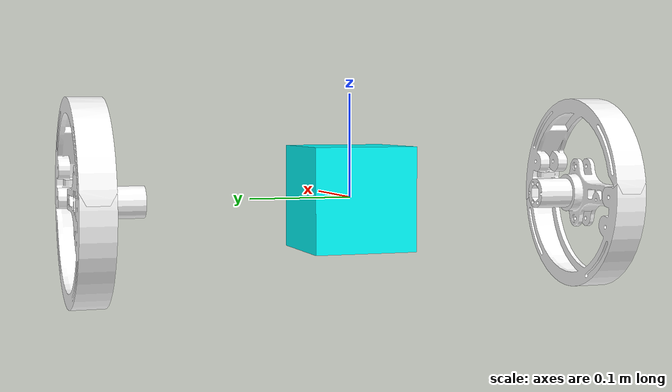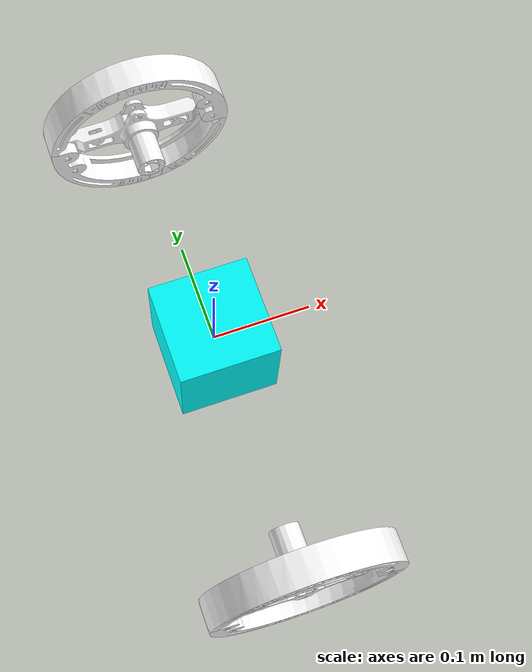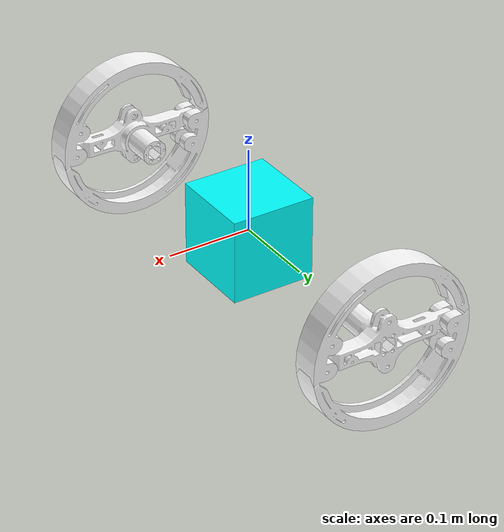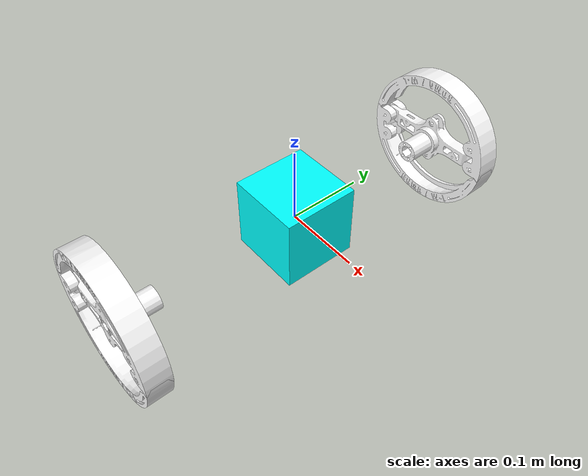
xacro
<?xml version="1.0" encoding="utf-8"?>

<robot xmlns:xacro="http://www.ros.org/wiki/xacro" name="WheelLegSegway">

  <!--load model definations-->
  <xacro:include filename="$(find wheelleg_description)/urdf/WheelLeg.xacro"/>

  <!--load gazebo specific configuration-->
  <xacro:include filename="$(find wheelleg_description)/urdf/WheelLeg.gazebo"/>

  <!--load control interface for robot-->
  <gazebo>
    <plugin name="gazebo_ros_control" filename="libgazebo_ros_control.so">
      <robotNamespace>/WheelLegSegway</robotNamespace>
    </plugin>
  </gazebo>

  <link name="static_base">

    <inertial>
      <origin xyz="0.05 0.05 0.05" rpy="0 0 0"/>
      <mass value="1"/>
      <inertia ixx="0.00167"  ixy="0"  ixz="0" iyy="0.00167" iyz="0" izz="0.00167" />
    </inertial>

    <visual>
      <origin xyz="0 0 0" rpy="0 0 0" />
      <geometry>
        <box size="0.1 0.1 0.1" />
      </geometry>
      <material name="Cyan">
        <color rgba="0 1.0 1.0 1.0"/>
      </material>
    </visual>

  </link>

  <gazebo>
      <joint name ="weld" type="fixed">
          <parent>world</parent>
          <child>static_base</child>
      </joint>
  </gazebo>

  <joint name="z_dof" type="prismatic">
    <origin xyz="0 0 0" rpy="0 0 0"/>
    <parent link="static_base"/>
    <child link="z_dummy_link"/>
    <limit effort="30" velocity="100.0" lower="-200" upper="200" />
    <axis xyz="0 0 1"/>
  </joint>

  <link name="z_dummy_link">

    <inertial>
      <origin xyz="0.05 0.05 0.05" rpy="0 0 0"/>
      <mass value="1"/>
      <inertia ixx="0.00167"  ixy="0"  ixz="0" iyy="0.00167" iyz="0" izz="0.00167" />
    </inertial>

    <visual>
      <origin xyz="0 0 0" rpy="0 0 0" />
      <geometry>
        <box size="0.1 0.1 0.1" />
      </geometry>
      <material name="Cyan">
        <color rgba="0 1.0 1.0 1.0"/>
      </material>
    </visual>

  </link>

  <joint name="x_dof" type="prismatic">
    <origin xyz="0 0 0" rpy="0 0 0"/>
    <parent link="z_dummy_link"/>
    <child link="base_link"/>
    <limit effort="30" velocity="100.0" lower="-200" upper="200" />
    <axis xyz="1 0 0"/>\
  </joint>

  <!--define robot base link-->
  <link name="base_link">
    <inertial>
      <origin xyz="0.05 0.05 0.05" rpy="0 0 0"/>
      <mass value="1"/>
      <inertia ixx="0.00167"  ixy="0"  ixz="0" iyy="0.00167" iyz="0" izz="0.00167" />
    </inertial>

    <visual>
      <origin xyz="0 0 0" rpy="0 0 0" />
      <geometry>
        <box size="0.1 0.1 0.1" />
      </geometry>
      <material name="Cyan">
        <color rgba="0 1.0 1.0 1.0"/>
      </material>
    </visual>

  </link>

  <joint name="camera_joint" type="fixed">
    <origin xyz="0 0.7 0" rpy="0 0 -1.570796326794897"/>
    <parent link="base_link"/>
    <child link="camera_link"/>
    <axis xyz="0 0 1"/>
  </joint>

  <link name="camera_link">
    <inertial>
      <origin xyz="0.05 0.05 0.05" rpy="0 0 0"/>
      <mass value="0.001"/>
      <inertia ixx="0.000167"  ixy="0"  ixz="0" iyy="0.000167" iyz="0" izz="0.000167" />
    </inertial>
  </link>

  <!--define joints-->
  <xacro:LeftWheelLeg name="L" x="0" y="0.2" z="0.0" parent="base_link"/>
  <xacro:RightWheelLeg name="R" x="0" y="-0.2" z="0.0" parent="base_link"/>

  <!--add gazebo joint configures-->
  <xacro:wheelLegJointConfig name="L" />
  <xacro:wheelLegJointConfig name="R" />

</robot>

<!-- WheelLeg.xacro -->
<robot xmlns:xacro="http://www.ros.org/wiki/xacro" >

  <xacro:macro name="joint_box" params="name x y z parent">

    <joint name="${name}_fixed_joint" type="fixed">
      <origin xyz="${x} ${y} ${z}" rpy="0 0 0"/>
      <parent link="${parent}"/>
      <child link="${name}"/>
      <axis xyz="0 0 1"/>
    </joint>

    <link name="${name}">

      <inertial>
        <origin xyz="0.0 0.0 0.0" rpy="0 0 0"/>
        <mass value="0.01"/>
        <inertia ixx="0.000167"  ixy="0"  ixz="0" iyy="0.000167" iyz="0" izz="0.000167" />
      </inertial>

      <visual>
        <origin xyz="0 0 0" rpy="0 0 0" />
        <geometry>
          <box size="0.05 0.075 0.05" />
        </geometry>
        <material name="Cyan">
          <color rgba="0 1.0 1.0 1.0"/>
        </material>
      </visual>

    </link>

  </xacro:macro>

  <!--left wheelLeg model-->
  <xacro:macro name="LeftWheelLeg" params="name x y z parent">

    <link name="${name}">
      <inertial>
        <origin
          xyz="4.8179E-09 1.5313E-06 0.045042"
          rpy="0 0 0" />
        <mass
          value="0.075119" />
        <inertia
          ixx="0.00010565"
          ixy="-1.0649E-07"
          ixz="-2.3479E-12"
          iyy="2.7546E-05"
          iyz="-8.9308E-10"
          izz="9.6655E-05" />
      </inertial>
      <visual>
        <origin
          xyz="0 0 0"
          rpy="0 0 0" />
        <geometry>
          <mesh
            filename="package://wheelleg_description/meshes/Left.STL" />
        </geometry>
        <material
          name="">
          <color
            rgba="1 1 1 1" />
        </material>
      </visual>
      <collision>
        <origin
          xyz="0 0 0"
          rpy="0 0 0" />
        <geometry>
          <mesh
            filename="package://wheelleg_description/meshes/Left.STL" />
        </geometry>
      </collision>
    </link>

    <joint name="${name}_Joint" type="continuous">
      <origin
        xyz="${x} ${y} ${z}"
        rpy="1.5708 -1.5708 3.1416" />
      <parent
        link="${parent}" />
      <child
        link="${name}" />
      <axis
        xyz="0 0 1" />
      <limit effort="2.8" velocity="30"/>
    </joint>

    <link name="${name}RA">
      <inertial>
        <origin
          xyz="0.060620953877514 -0.0509052185223456 -0.0160797180106055"
          rpy="0 0 0" />
        <mass
          value="0.102065831041357" />
        <inertia
          ixx="0.000107618762660542"
          ixy="6.4058045299092E-05"
          ixz="1.40721471251035E-07"
          iyy="0.000426511611787524"
          iyz="-2.25569567809916E-07"
          izz="0.000513500369211842" />
      </inertial>
      <visual>
        <origin
          xyz="0 0 0"
          rpy="0 0 0" />
        <geometry>
          <mesh
            filename="package://wheelleg_description/meshes/LeftRimA.STL" />
        </geometry>
        <material
          name="">
          <color
            rgba="1 1 1 1" />
        </material>
      </visual>
      <collision name = "${name}RA_collision">
        <origin
          xyz="0 0 0"
          rpy="0 0 0" />
        <geometry>
          <mesh
            filename="package://wheelleg_description/meshes/LeftRimA.STL" />
        </geometry>
      </collision>
    </link>

    <joint name="${name}RA_Joint" type="continuous">
      <origin
        xyz="0 -0.08 0.038242"
        rpy="3.1416 0 1.5708" />
      <parent
        link="${name}" />
      <child
        link="${name}RA" />
      <axis
        xyz="0 0 1" />
      <dynamics damping="0.01" friction="0.0"/>
      <limit effort="2.8" velocity="5"/>
    </joint>

    <link name="${name}RB">
      <inertial>
        <origin
          xyz="0.060620953877514 -0.0509052185223458 -0.0160797180106054"
          rpy="0 0 0" />
        <mass
          value="0.102065831041357" />
        <inertia
          ixx="0.000107618762660542"
          ixy="6.4058045299092E-05"
          ixz="1.40721471251074E-07"
          iyy="0.000426511611787524"
          iyz="-2.2556956780994E-07"
          izz="0.000513500369211842" />
      </inertial>
      <visual>
        <origin
          xyz="0 0 0"
          rpy="0 0 0" />
        <geometry>
          <mesh
            filename="package://wheelleg_description/meshes/LeftRimB.STL" />
        </geometry>
        <material
          name="">
          <color
            rgba="1 1 1 1" />
        </material>
      </visual>
      <collision name = "${name}RB_collision">
        <origin
          xyz="0 0 0"
          rpy="0 0 0" />
        <geometry>
          <mesh
            filename="package://wheelleg_description/meshes/LeftRimB.STL" />
        </geometry>
      </collision>
    </link>

    <joint name="${name}RB_Joint" type="continuous">
      <origin
        xyz="0 0.08 0.038242"
        rpy="3.1416 0 -1.5708" />
      <parent
        link="${name}" />
      <child
        link="${name}RB" />
      <axis
        xyz="0 0 1" />
      <dynamics damping="0.01" friction="0.0"/>
      <limit effort="2.8" velocity="5"/>
    </joint>

  </xacro:macro>

  <!--right wheelLeg model-->
  <xacro:macro name="RightWheelLeg" params="name x y z parent">

    <link name="${name}">
      <inertial>
        <origin
          xyz="4.8179E-09 1.5313E-06 0.045042"
          rpy="0 0 0" />
        <mass
          value="0.075119" />
        <inertia
          ixx="0.00010565"
          ixy="-1.0649E-07"
          ixz="-2.3479E-12"
          iyy="2.7546E-05"
          iyz="-8.9308E-10"
          izz="9.6655E-05" />
      </inertial>
      <visual>
        <origin
          xyz="0 0 0"
          rpy="0 0 0" />
        <geometry>
          <mesh
            filename="package://wheelleg_description/meshes/Right.STL" />
        </geometry>
        <material
          name="">
          <color
            rgba="1 1 1 1" />
        </material>
      </visual>
      <collision>
        <origin
          xyz="0 0 0"
          rpy="0 0 0" />
        <geometry>
          <mesh
            filename="package://wheelleg_description/meshes/Right.STL" />
        </geometry>
      </collision>
    </link>

    <joint name="${name}_Joint" type="continuous">
      <origin
        xyz="${x} ${y} ${z}"
        rpy="1.5708 1.5708 0.0" />
      <parent
        link="${parent}" />
      <child
        link="${name}" />
      <axis
        xyz="0 0 1" />
      <limit effort="2.8" velocity="30"/>
    </joint>

    <link name="${name}RA">
      <inertial>
        <origin
          xyz="0.0606209538775138 -0.0509052185223455 0.0159343419031902"
          rpy="0 0 0" />
        <mass
          value="0.102065831041357" />
        <inertia
          ixx="0.000107618762660542"
          ixy="6.40580452990925E-05"
          ixz="1.40721471251091E-07"
          iyy="0.000426511611787524"
          iyz="-2.25569567809853E-07"
          izz="0.000513500369211842" />
      </inertial>
      <visual>
        <origin
          xyz="0 0 0"
          rpy="0 0 0" />
        <geometry>
          <mesh
            filename="package://wheelleg_description/meshes/RightRimA.STL" />
        </geometry>
        <material
          name="">
          <color
            rgba="1 1 1 1" />
        </material>
      </visual>
      <collision name = "${name}RA_collision">
        <origin
          xyz="0 0 0"
          rpy="0 0 0" />
        <geometry>
          <mesh
            filename="package://wheelleg_description/meshes/RightRimA.STL" />
        </geometry>
      </collision>
    </link>

    <joint name="${name}RA_Joint" type="continuous">
      <origin
        xyz="0 -0.08 0.038244"
        rpy="0 0 1.5708" />
      <parent
        link="${name}" />
      <child
        link="${name}RA" />
      <axis
        xyz="0 0 1" />

      <dynamics damping="0.01" friction="0.0"/>
      <limit effort="2.8" velocity="5"/>
    </joint>

    <link name="${name}RB">
      <inertial>
        <origin
          xyz="0.060620953877514 -0.050905218522346 0.0159343419031902"
          rpy="0 0 0" />
        <mass
          value="0.102065831041357" />
        <inertia
          ixx="0.000107618762660542"
          ixy="6.40580452990932E-05"
          ixz="1.40721471251035E-07"
          iyy="0.000426511611787523"
          iyz="-2.25569567810021E-07"
          izz="0.00051350036921184" />
      </inertial>
      <visual>
        <origin
          xyz="0 0 0"
          rpy="0 0 0" />
        <geometry>
          <mesh
            filename="package://wheelleg_description/meshes/RightRimB.STL" />
        </geometry>
        <material
          name="">
          <color
            rgba="1 1 1 1" />
        </material>
      </visual>
      <collision name = "${name}RB_collision">
        <origin
          xyz="0 0 0"
          rpy="0 0 0" />
        <geometry>
          <mesh
            filename="package://wheelleg_description/meshes/RightRimB.STL" />
        </geometry>
      </collision>
    </link>

    <joint name="${name}RB_Joint" type="continuous">
      <origin
        xyz="0 0.08 0.038244"
        rpy="0 0 -1.5708" />
      <parent
        link="${name}" />
      <child
        link="${name}RB" />
      <axis
        xyz="0 0 1" />
      <dynamics damping="0.01" friction="0.0"/>
      <limit effort="2.8" velocity="30"/>
    </joint>

  </xacro:macro>

</robot>
